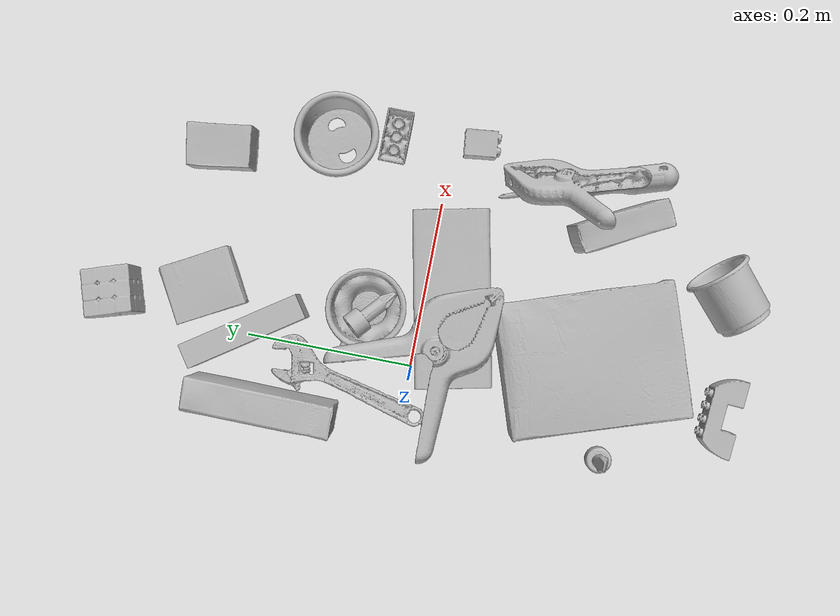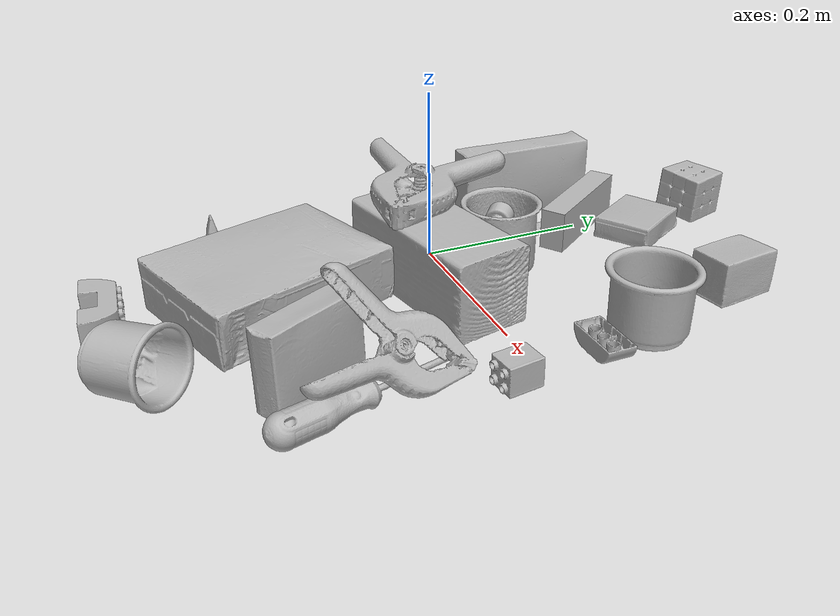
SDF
<sdf version="1.4">
  <world name="default">
    <light name="light1" type="point">
      <pose>0 0 1 0 0 0</pose>
      <diffuse>3 3 3 1</diffuse>
      <specular>3 3 3 1</specular>
    </light>
    <light name="light2" type="point">
      <pose>0 0.5 2 0 0 0</pose>
      <diffuse>1 1 1 1</diffuse>
      <specular>1 1 1 1</specular>
    </light>
    <light name="light3" type="point">
      <pose>0 0.5 2 0 0 0</pose>
      <diffuse>3 3 3 1</diffuse>
      <specular>3 3 3 1</specular>
    </light>
    <scene>
      <ambient>0.7 0.7 0.7</ambient>
    </scene>
    <model name="box21">
      <link name="link_box21">
        <collision name="default">
          <geometry>
            <mesh>
              <uri>model://cracker_box/collision_meshes/collision.obj</uri>
              <scale>1.0 1.0 1.0</scale>
            </mesh>
          </geometry>
          <surface>
            <friction>
              <ode>
                <mu>0.5</mu>
                <mu2>0.5</mu2>
              </ode>
            </friction>
          <contact>
        <ode>
            <max_vel>0</max_vel>
            <min_depth>0.0001</min_depth>
            <kp>1e8</kp>
        </ode>
    </contact></surface>
        </collision>
        <visual name="default">
          <geometry>
            <mesh>
              <uri>model://cracker_box/visual_meshes/visual.dae</uri>
              <scale>1.0 1.0 1.0</scale>
            </mesh>
          </geometry>
        </visual>
        <inertial>
          <mass>1.391977071762085</mass>
          <pose>0.0009464159375056624 0.0002543424488976598 -0.0017029533628374338 -0.000316207597302205 -0.011106489600460226 0.002546794768991959</pose>
          <inertia>
            <ixx>0.0035405685</ixx>
            <iyy>0.0058461735</iyy>
            <izz>0.008343027</izz>
            <ixy>0</ixy>
            <ixz>0</ixz>
            <iyz>0</iyz>
          </inertia>
        </inertial>
      </link>
      <pose>0.05141538381576538 -0.20611552894115448 0.035531412810087204 3.1372012698467873 -0.01654375291454054 1.9021858092698642</pose>
    </model>
    <model name="box22">
      <link name="link_box22">
        <collision name="default">
          <geometry>
            <mesh>
              <uri>model://pudding_box/collision_meshes/collision.obj</uri>
              <scale>1.0 1.0 1.0</scale>
            </mesh>
          </geometry>
          <surface>
            <friction>
              <ode>
                <mu>0.5</mu>
                <mu2>0.5</mu2>
              </ode>
            </friction>
          <contact>
        <ode>
            <max_vel>0</max_vel>
            <min_depth>0.0001</min_depth>
            <kp>1e8</kp>
        </ode>
    </contact></surface>
        </collision>
        <visual name="default">
          <geometry>
            <mesh>
              <uri>model://pudding_box/visual_meshes/visual.dae</uri>
              <scale>1.0 1.0 1.0</scale>
            </mesh>
          </geometry>
        </visual>
        <inertial>
          <mass>0.30066633224487305</mass>
          <pose>0.0004894821904599667 0.0008067885646596551 -0.0005188827635720372 0.005213102250656644 -0.006603798267444238 0.020079828885202117</pose>
          <inertia>
            <ixx>0.0003398878</ixx>
            <iyy>0.00022867892</iyy>
            <izz>0.00050193316</izz>
            <ixy>0</ixy>
            <ixz>0</ixz>
            <iyz>0</iyz>
          </inertia>
        </inertial>
      </link>
      <pose>0.21305444836616516 -0.20964014530181885 0.045128364115953445 -0.08609046355948766 1.5478487085244839 0.4100360406527351</pose>
    </model>
    <model name="box23">
      <link name="link_box23">
        <collision name="default">
          <geometry>
            <mesh>
              <uri>model://rubiks_cube/collision_meshes/collision.obj</uri>
              <scale>1.0 1.0 1.0</scale>
            </mesh>
          </geometry>
          <surface>
            <friction>
              <ode>
                <mu>0.5</mu>
                <mu2>0.5</mu2>
              </ode>
            </friction>
          <contact>
        <ode>
            <max_vel>0</max_vel>
            <min_depth>0.0001</min_depth>
            <kp>1e8</kp>
        </ode>
    </contact></surface>
        </collision>
        <visual name="default">
          <geometry>
            <mesh>
              <uri>model://rubiks_cube/visual_meshes/visual.dae</uri>
              <scale>1.0 1.0 1.0</scale>
            </mesh>
          </geometry>
        </visual>
        <inertial>
          <mass>0.26383036375045776</mass>
          <pose>2.6721041649580002e-05 5.256966323941015e-05 -7.264316082000732e-06 -0.054671492146459166 -0.0981403456898064 -0.03445706250673431</pose>
          <inertia>
            <ixx>0.000145784</ixx>
            <iyy>0.00014510413</iyy>
            <izz>0.00014699204</izz>
            <ixy>0</ixy>
            <ixz>0</ixz>
            <iyz>0</iyz>
          </inertia>
        </inertial>
      </link>
      <pose>0.02077319659292698 0.3637858033180237 0.029700201004743576 -1.6127558965002518 -0.0206511178154147 -1.2633903002161604</pose>
    </model>
    <model name="cup1">
      <link name="link_cup1">
        <collision name="default">
          <geometry>
            <mesh>
              <uri>model://i_cups/collision_meshes/collision.obj</uri>
              <scale>1.0 1.0 1.0</scale>
            </mesh>
          </geometry>
          <surface>
            <friction>
              <ode>
                <mu>0.5</mu>
                <mu2>0.5</mu2>
              </ode>
            </friction>
          <contact>
        <ode>
            <max_vel>0</max_vel>
            <min_depth>0.0001</min_depth>
            <kp>1e8</kp>
        </ode>
    </contact></surface>
        </collision>
        <visual name="default">
          <geometry>
            <mesh>
              <uri>model://i_cups/visual_meshes/visual.dae</uri>
              <scale>1.0 1.0 1.0</scale>
            </mesh>
          </geometry>
        </visual>
        <inertial>
          <mass>0.07817669957876205</mass>
          <pose>0.00011240140884183347 0.00016797371790744364 -0.0008579030982218683 -0.02898336998566683 -0.039872909189422004 -0.34590568894983</pose>
          <inertia>
            <ixx>0.000108236774</ixx>
            <iyy>0.000109190434</iyy>
            <izz>0.00012097212</izz>
            <ixy>0</ixy>
            <ixz>0</ixz>
            <iyz>0</iyz>
          </inertia>
        </inertial>
      </link>
      <pose>0.25053414702415466 0.13546046614646912 0.03777345269918442 0.002000637435854322 -0.006338213281684127 -2.9036250026230164</pose>
    </model>
    <model name="cup2">
      <link name="link_cup2">
        <collision name="default">
          <geometry>
            <mesh>
              <uri>model://f_cups/collision_meshes/collision.obj</uri>
              <scale>1.0 1.0 1.0</scale>
            </mesh>
          </geometry>
          <surface>
            <friction>
              <ode>
                <mu>0.5</mu>
                <mu2>0.5</mu2>
              </ode>
            </friction>
          <contact>
        <ode>
            <max_vel>0</max_vel>
            <min_depth>0.0001</min_depth>
            <kp>1e8</kp>
        </ode>
    </contact></surface>
        </collision>
        <visual name="default">
          <geometry>
            <mesh>
              <uri>model://f_cups/visual_meshes/visual.dae</uri>
              <scale>1.0 1.0 1.0</scale>
            </mesh>
          </geometry>
        </visual>
        <inertial>
          <mass>0.06179655343294144</mass>
          <pose>-0.003171469084918499 -0.0006240077782422304 -0.0036555363330990076 0.786228783809594 -0.26079147583364887 -0.18237327348602217</pose>
          <inertia>
            <ixx>5.8090412e-05</ixx>
            <iyy>6.0937502e-05</iyy>
            <izz>6.3437656e-05</izz>
            <ixy>0</ixy>
            <ixz>0</ixz>
            <iyz>0</iyz>
          </inertia>
        </inertial>
      </link>
      <pose>0.15609270334243774 -0.3561132848262787 0.03703620284795761 1.3143680967358247 -1.1802852942612574 2.547843628977089</pose>
    </model>
    <model name="box11">
      <link name="link_box11">
        <collision name="default">
          <geometry>
            <mesh>
              <uri>model://jenga/collision_meshes/collision.obj</uri>
              <scale>1.0 1.0 1.0</scale>
            </mesh>
          </geometry>
          <surface>
            <friction>
              <ode>
                <mu>0.5</mu>
                <mu2>0.5</mu2>
              </ode>
            </friction>
          <contact>
        <ode>
            <max_vel>0</max_vel>
            <min_depth>0.0001</min_depth>
            <kp>1e8</kp>
        </ode>
    </contact></surface>
        </collision>
        <visual name="default">
          <geometry>
            <mesh>
              <uri>model://jenga/visual_meshes/visual.dae</uri>
              <scale>1.0 1.0 1.0</scale>
            </mesh>
          </geometry>
        </visual>
        <inertial>
          <mass>0.2841220796108246</mass>
          <pose>-2.5028555228345795e-07 -0.00010250010382151231 -4.0923401684267446e-05 0.0 -7.34215461761844e-07 0.0</pose>
          <inertia>
            <ixx>7.8623474e-05</ixx>
            <iyy>0.00053275056</iyy>
            <izz>0.0005687565</izz>
            <ixy>0</ixy>
            <ixz>0</ixz>
            <iyz>0</iyz>
          </inertia>
        </inertial>
      </link>
      <pose>0.005068609490990639 0.201974555850029 0.02470194548368454 1.5774964672180931 -6.540987745935038e-08 2.1730840730442096</pose>
    </model>
    <model name="box12">
      <link name="link_box12">
        <collision name="default">
          <geometry>
            <mesh>
              <uri>model://wood_block/collision_meshes/collision.obj</uri>
              <scale>1.0 1.0 1.0</scale>
            </mesh>
          </geometry>
          <surface>
            <friction>
              <ode>
                <mu>0.5</mu>
                <mu2>0.5</mu2>
              </ode>
            </friction>
          <contact>
        <ode>
            <max_vel>0</max_vel>
            <min_depth>0.0001</min_depth>
            <kp>1e8</kp>
        </ode>
    </contact></surface>
        </collision>
        <visual name="default">
          <geometry>
            <mesh>
              <uri>model://wood_block/visual_meshes/visual.dae</uri>
              <scale>1.0 1.0 1.0</scale>
            </mesh>
          </geometry>
        </visual>
        <inertial>
          <mass>1.792885661125183</mass>
          <pose>-5.813315510749817e-06 -0.0005708095268346369 0.0002640858292579651 -0.0522099864925601 -0.005192695938411627 -0.006861379223067069</pose>
          <inertia>
            <ixx>0.0023991528</ixx>
            <iyy>0.007578924</iyy>
            <izz>0.007550574</izz>
            <ixy>0</ixy>
            <ixz>0</ixz>
            <iyz>0</iyz>
          </inertia>
        </inertial>
      </link>
      <pose>0.09111347049474716 -0.03148794546723366 0.04525856301188469 -0.005209952743308998 0.0057183241263252865 0.21112104732891496</pose>
    </model>
    <model name="box13">
      <link name="link_box13">
        <collision name="default">
          <geometry>
            <mesh>
              <uri>model://sugar_box/collision_meshes/collision.obj</uri>
              <scale>1.0 1.0 1.0</scale>
            </mesh>
          </geometry>
          <surface>
            <friction>
              <ode>
                <mu>0.5</mu>
                <mu2>0.5</mu2>
              </ode>
            </friction>
          <contact>
        <ode>
            <max_vel>0</max_vel>
            <min_depth>0.0001</min_depth>
            <kp>1e8</kp>
        </ode>
    </contact></surface>
        </collision>
        <visual name="default">
          <geometry>
            <mesh>
              <uri>model://sugar_box/visual_meshes/visual.dae</uri>
              <scale>1.0 1.0 1.0</scale>
            </mesh>
          </geometry>
        </visual>
        <inertial>
          <mass>0.8825364708900452</mass>
          <pose>0.0010343727190047503 3.8491099985549226e-05 -0.00036364805418998003 -0.0004046260965456432 0.0010506635219437153 0.002615379021860657</pose>
          <inertia>
            <ixx>0.0007353271</ixx>
            <iyy>0.0023767278</iyy>
            <izz>0.002845227</izz>
            <ixy>0</ixy>
            <ixz>0</ixz>
            <iyz>0</iyz>
          </inertia>
        </inertial>
      </link>
      <pose>-0.07476019859313965 0.16333171725273132 0.04645010828971863 1.5710197338333358 -3.9933661365875475e-05 1.5643783802861186</pose>
    </model>
    <model name="box14">
      <link name="link_box14">
        <collision name="default">
          <geometry>
            <mesh>
              <uri>model://gelatin_box/collision_meshes/collision.obj</uri>
              <scale>1.0 1.0 1.0</scale>
            </mesh>
          </geometry>
          <surface>
            <friction>
              <ode>
                <mu>0.5</mu>
                <mu2>0.5</mu2>
              </ode>
            </friction>
          <contact>
        <ode>
            <max_vel>0</max_vel>
            <min_depth>0.0001</min_depth>
            <kp>1e8</kp>
        </ode>
    </contact></surface>
        </collision>
        <visual name="default">
          <geometry>
            <mesh>
              <uri>model://gelatin_box/visual_meshes/visual.dae</uri>
              <scale>1.0 1.0 1.0</scale>
            </mesh>
          </geometry>
        </visual>
        <inertial>
          <mass>0.13771659135818481</mass>
          <pose>0.0004319618456065655 0.00011156871914863586 -0.0003640321083366871 -0.0010503722043797578 -0.004755819155943452 0.016440555746729004</pose>
          <inertia>
            <ixx>9.721668e-05</ixx>
            <iyy>6.944137e-05</iyy>
            <izz>0.00014798543</izz>
            <ixy>0</ixy>
            <ixz>0</ixz>
            <iyz>0</iyz>
          </inertia>
        </inertial>
      </link>
      <pose>0.048427555710077286 0.26257383823394775 0.014580638147890568 -3.1258657195336137 -0.025719272308993183 0.5098933370335165</pose>
    </model>
    <model name="cup15">
      <link name="link_cup15">
        <collision name="default">
          <geometry>
            <mesh>
              <uri>model://mug/collision_meshes/collision.obj</uri>
              <scale>1.0 1.0 1.0</scale>
            </mesh>
          </geometry>
          <surface>
            <friction>
              <ode>
                <mu>0.5</mu>
                <mu2>0.5</mu2>
              </ode>
            </friction>
          <contact>
        <ode>
            <max_vel>0</max_vel>
            <min_depth>0.0001</min_depth>
            <kp>1e8</kp>
        </ode>
    </contact></surface>
        </collision>
        <visual name="default">
          <geometry>
            <mesh>
              <uri>model://mug/visual_meshes/visual.dae</uri>
              <scale>1.0 1.0 1.0</scale>
            </mesh>
          </geometry>
        </visual>
        <inertial>
          <mass>0.09286905825138092</mass>
          <pose>0.009571668691933155 0.0008143252343870699 -0.010947328992187977 -0.12983168029791675 0.08737751579099198 0.05507277032354666</pose>
          <inertia>
            <ixx>9.2248694e-05</ixx>
            <iyy>0.00010303637</iyy>
            <izz>0.00011916295</izz>
            <ixy>0</ixy>
            <ixz>0</ixz>
            <iyz>0</iyz>
          </inertia>
        </inertial>
      </link>
      <pose>0.04876173287630081 0.06597407162189484 0.0409490130841732 5.69175113209793e-07 -8.471694039949233e-07 -0.32485721897733977</pose>
    </model>
    <model name="toy1">
      <link name="link_toy1">
        <collision name="default">
          <geometry>
            <mesh>
              <uri>model://e_toy_airplane/collision_meshes/collision.obj</uri>
              <scale>1.0 1.0 1.0</scale>
            </mesh>
          </geometry>
          <surface>
            <friction>
              <ode>
                <mu>0.5</mu>
                <mu2>0.5</mu2>
              </ode>
            </friction>
          <contact>
        <ode>
            <max_vel>0</max_vel>
            <min_depth>0.0001</min_depth>
            <kp>1e8</kp>
        </ode>
    </contact></surface>
        </collision>
        <visual name="default">
          <geometry>
            <mesh>
              <uri>model://e_toy_airplane/visual_meshes/visual.dae</uri>
              <scale>1.0 1.0 1.0</scale>
            </mesh>
          </geometry>
        </visual>
        <inertial>
          <mass>0.023911256343126297</mass>
          <pose>0.00011740469199139625 -2.2482965505332686e-05 -0.011187205091118813 0.005518515901869279 0.009228280443904262 0.15041685177791278</pose>
          <inertia>
            <ixx>7.297989e-06</ixx>
            <iyy>7.223337e-06</iyy>
            <izz>2.1933329e-06</izz>
            <ixy>0</ixy>
            <ixz>0</ixz>
            <iyz>0</iyz>
          </inertia>
        </inertial>
      </link>
      <pose>-0.06568524241447449 -0.24347129464149475 0.03321295231580734 9.987161479392767e-05 3.331834214289189e-06 1.42110109874372</pose>
    </model>
    <model name="toy2">
      <link name="link_toy2">
        <collision name="default">
          <geometry>
            <mesh>
              <uri>model://e_lego_duplo/collision_meshes/collision.obj</uri>
              <scale>1.0 1.0 1.0</scale>
            </mesh>
          </geometry>
          <surface>
            <friction>
              <ode>
                <mu>0.5</mu>
                <mu2>0.5</mu2>
              </ode>
            </friction>
          <contact>
        <ode>
            <max_vel>0</max_vel>
            <min_depth>0.0001</min_depth>
            <kp>1e8</kp>
        </ode>
    </contact></surface>
        </collision>
        <visual name="default">
          <geometry>
            <mesh>
              <uri>model://e_lego_duplo/visual_meshes/visual.dae</uri>
              <scale>1.0 1.0 1.0</scale>
            </mesh>
          </geometry>
        </visual>
        <inertial>
          <mass>0.11075761169195175</mass>
          <pose>0.00032560486579313874 0.0002348541165702045 0.0019521445501595736 -0.02256776115193108 -6.825012723321977e-05 -0.007625153470106003</pose>
          <inertia>
            <ixx>2.3096625e-05</ixx>
            <iyy>9.479449e-05</iyy>
            <izz>9.231077e-05</izz>
            <ixy>0</ixy>
            <ixz>0</ixz>
            <iyz>0</iyz>
          </inertia>
        </inertial>
      </link>
      <pose>0.015295609831809998 -0.37482789158821106 0.01651785522699356 -1.57158841156779 0.005904221784687612 -0.07164010087633414</pose>
    </model>
    <model name="toy3">
      <link name="link_toy3">
        <collision name="default">
          <geometry>
            <mesh>
              <uri>model://foam_brick/collision_meshes/collision.obj</uri>
              <scale>1.0 1.0 1.0</scale>
            </mesh>
          </geometry>
          <surface>
            <friction>
              <ode>
                <mu>0.5</mu>
                <mu2>0.5</mu2>
              </ode>
            </friction>
          <contact>
        <ode>
            <max_vel>0</max_vel>
            <min_depth>0.0001</min_depth>
            <kp>1e8</kp>
        </ode>
    </contact></surface>
        </collision>
        <visual name="default">
          <geometry>
            <mesh>
              <uri>model://foam_brick/visual_meshes/visual.dae</uri>
              <scale>1.0 1.0 1.0</scale>
            </mesh>
          </geometry>
        </visual>
        <inertial>
          <mass>0.18736568093299866</mass>
          <pose>-0.0002522472059354186 0.0003458441933616996 -0.0002532101352699101 -0.2940186982087205 0.017274432871393446 -0.000744985669109422</pose>
          <inertia>
            <ixx>8.184482e-05</ixx>
            <iyy>0.00013066948</iyy>
            <izz>0.00013233014</izz>
            <ixy>0</ixy>
            <ixz>0</ixz>
            <iyz>0</iyz>
          </inertia>
        </inertial>
      </link>
      <pose>0.21443672478199005 0.2705848515033722 0.025496836751699448 3.1325083677467522 0.006607234973189367 1.7071060013836128</pose>
    </model>
    <model name="toy4">
      <link name="link_toy4">
        <collision name="default">
          <geometry>
            <mesh>
              <uri>model://b_lego_duplo/collision_meshes/collision.obj</uri>
              <scale>1.0 1.0 1.0</scale>
            </mesh>
          </geometry>
          <surface>
            <friction>
              <ode>
                <mu>0.5</mu>
                <mu2>0.5</mu2>
              </ode>
            </friction>
          <contact>
        <ode>
            <max_vel>0</max_vel>
            <min_depth>0.0001</min_depth>
            <kp>1e8</kp>
        </ode>
    </contact></surface>
        </collision>
        <visual name="default">
          <geometry>
            <mesh>
              <uri>model://b_lego_duplo/visual_meshes/visual.dae</uri>
              <scale>1.0 1.0 1.0</scale>
            </mesh>
          </geometry>
        </visual>
        <inertial>
          <mass>0.025353357195854187</mass>
          <pose>-0.00011053043272113428 -9.152237907983363e-06 0.001929429010488093 -0.03749469050897604 -0.02635423063131295 0.4518929125976256</pose>
          <inertia>
            <ixx>5.188755e-06</ixx>
            <iyy>5.223636e-06</iyy>
            <izz>4.623011e-06</izz>
            <ixy>0</ixy>
            <ixz>0</ixz>
            <iyz>0</iyz>
          </inertia>
        </inertial>
      </link>
      <pose>0.27851077914237976 -0.033112864941358566 0.016216622665524483 -1.580233882386815 0.00032662811076978926 -3.024908534739917</pose>
    </model>
    <model name="toy5">
      <link name="link_toy5">
        <collision name="default">
          <geometry>
            <mesh>
              <uri>model://d_toy_airplane/collision_meshes/collision.obj</uri>
              <scale>1.0 1.0 1.0</scale>
            </mesh>
          </geometry>
          <surface>
            <friction>
              <ode>
                <mu>0.5</mu>
                <mu2>0.5</mu2>
              </ode>
            </friction>
          <contact>
        <ode>
            <max_vel>0</max_vel>
            <min_depth>0.0001</min_depth>
            <kp>1e8</kp>
        </ode>
    </contact></surface>
        </collision>
        <visual name="default">
          <geometry>
            <mesh>
              <uri>model://d_toy_airplane/visual_meshes/visual.dae</uri>
              <scale>1.0 1.0 1.0</scale>
            </mesh>
          </geometry>
        </visual>
        <inertial>
          <mass>0.012228579260408878</mass>
          <pose>9.410289931111038e-05 -5.8093195548281074e-05 -0.011728097684681416 0.00026677116185868234 0.004678984415060646 0.5194210089241819</pose>
          <inertia>
            <ixx>3.6658907e-06</ixx>
            <iyy>3.6686554e-06</iyy>
            <izz>1.1067563e-06</izz>
            <ixy>0</ixy>
            <ixz>0</ixz>
            <iyz>0</iyz>
          </inertia>
        </inertial>
      </link>
      <pose>0.05892070382833481 0.05560673773288727 0.050243593752384186 1.7537485759178484 0.6163415627474834 0.9473478140716721</pose>
    </model>
    <model name="toy6">
      <link name="link_toy6">
        <collision name="default">
          <geometry>
            <mesh>
              <uri>model://a_lego_duplo/collision_meshes/collision.obj</uri>
              <scale>1.0 1.0 1.0</scale>
            </mesh>
          </geometry>
          <surface>
            <friction>
              <ode>
                <mu>0.5</mu>
                <mu2>0.5</mu2>
              </ode>
            </friction>
          <contact>
        <ode>
            <max_vel>0</max_vel>
            <min_depth>0.0001</min_depth>
            <kp>1e8</kp>
        </ode>
    </contact></surface>
        </collision>
        <visual name="default">
          <geometry>
            <mesh>
              <uri>model://a_lego_duplo/visual_meshes/visual.dae</uri>
              <scale>1.0 1.0 1.0</scale>
            </mesh>
          </geometry>
        </visual>
        <inertial>
          <mass>0.012199957855045795</mass>
          <pose>-0.00011337617615936324 0.00018517585704103112 0.0003692606114782393 -0.014116995063493705 -0.0001256559143483996 6.140869386576653e-05</pose>
          <inertia>
            <ixx>1.564132e-06</ixx>
            <iyy>3.5039989e-06</iyy>
            <izz>4.340482e-06</izz>
            <ixy>0</ixy>
            <ixz>0</ixz>
            <iyz>0</iyz>
          </inertia>
        </inertial>
      </link>
      <pose>0.26803022623062134 0.0701238214969635 0.01212469395250082 -3.1413059159337826 -0.015582900272847025 -0.010880140140478237</pose>
    </model>
    <model name="hardware1">
      <link name="link_hardware1">
        <collision name="default">
          <geometry>
            <mesh>
              <uri>model://phillips_screwdriver/collision_meshes/collision.obj</uri>
              <scale>1.0 1.0 1.0</scale>
            </mesh>
          </geometry>
          <surface>
            <friction>
              <ode>
                <mu>0.5</mu>
                <mu2>0.5</mu2>
              </ode>
            </friction>
          <contact>
        <ode>
            <max_vel>0</max_vel>
            <min_depth>0.0001</min_depth>
            <kp>1e8</kp>
        </ode>
    </contact></surface>
        </collision>
        <visual name="default">
          <geometry>
            <mesh>
              <uri>model://phillips_screwdriver/visual_meshes/visual.dae</uri>
              <scale>1.0 1.0 1.0</scale>
            </mesh>
          </geometry>
        </visual>
        <inertial>
          <mass>0.06495495140552521</mass>
          <pose>-0.04777183011174202 0.0010362302418798208 -0.00045555501128546894 -0.1571888451297522 0.005850998841919991 -0.0021567342335393844</pose>
          <inertia>
            <ixx>7.63154e-06</ixx>
            <iyy>9.568614e-05</iyy>
            <izz>9.576745e-05</izz>
            <ixy>0</ixy>
            <ixz>0</ixz>
            <iyz>0</iyz>
          </inertia>
        </inertial>
      </link>
      <pose>0.25562453269958496 -0.1697978675365448 0.016042480245232582 -1.055470747304258 0.049395760682736156 1.8867900936430486</pose>
    </model>
    <model name="hardware2">
      <link name="link_hardware2">
        <collision name="default">
          <geometry>
            <mesh>
              <uri>model://extra_large_clamp/collision_meshes/collision.obj</uri>
              <scale>1.0 1.0 1.0</scale>
            </mesh>
          </geometry>
          <surface>
            <friction>
              <ode>
                <mu>0.5</mu>
                <mu2>0.5</mu2>
              </ode>
            </friction>
          <contact>
        <ode>
            <max_vel>0</max_vel>
            <min_depth>0.0001</min_depth>
            <kp>1e8</kp>
        </ode>
    </contact></surface>
        </collision>
        <visual name="default">
          <geometry>
            <mesh>
              <uri>model://extra_large_clamp/visual_meshes/visual.dae</uri>
              <scale>1.0 1.0 1.0</scale>
            </mesh>
          </geometry>
        </visual>
        <inertial>
          <mass>0.19384004175662994</mass>
          <pose>0.003232018556445837 -7.61538467486389e-05 0.00031721554114483297 0.013786997874205318 -0.000506684650300538 -0.0008936209831217155</pose>
          <inertia>
            <ixx>0.00029460518</ixx>
            <iyy>0.00050721905</iyy>
            <izz>0.0007749263</izz>
            <ixy>0</ixy>
            <ixz>0</ixz>
            <iyz>0</iyz>
          </inertia>
        </inertial>
      </link>
      <pose>0.029101930558681488 -0.025054704397916794 0.10909504443407059 3.103338232333182 -0.00415113814216769 -0.6232581907254582</pose>
    </model>
    <model name="hardware3">
      <link name="link_hardware3">
        <collision name="default">
          <geometry>
            <mesh>
              <uri>model://large_clamp/collision_meshes/collision.obj</uri>
              <scale>1.0 1.0 1.0</scale>
            </mesh>
          </geometry>
          <surface>
            <friction>
              <ode>
                <mu>0.5</mu>
                <mu2>0.5</mu2>
              </ode>
            </friction>
          <contact>
        <ode>
            <max_vel>0</max_vel>
            <min_depth>0.0001</min_depth>
            <kp>1e8</kp>
        </ode>
    </contact></surface>
        </collision>
        <visual name="default">
          <geometry>
            <mesh>
              <uri>model://large_clamp/visual_meshes/visual.dae</uri>
              <scale>1.0 1.0 1.0</scale>
            </mesh>
          </geometry>
        </visual>
        <inertial>
          <mass>0.09168914705514908</mass>
          <pose>0.006369357462972403 0.0003585686208680272 -0.0001839803735492751 -0.0021330784539622108 0.00967158945845961 0.026633182273159455</pose>
          <inertia>
            <ixx>8.0894904e-05</ixx>
            <iyy>0.00015362375</iyy>
            <izz>0.00022223631</izz>
            <ixy>0</ixy>
            <ixz>0</ixz>
            <iyz>0</iyz>
          </inertia>
        </inertial>
      </link>
      <pose>0.24630318582057953 -0.1395949274301529 0.04920636862516403 0.8755747350635633 0.4949311606444482 1.487626135352927</pose>
    </model>
    <model name="hardware4">
      <link name="link_hardware4">
        <collision name="default">
          <geometry>
            <mesh>
              <uri>model://adjustable_wrench/collision_meshes/collision.obj</uri>
              <scale>1.0 1.0 1.0</scale>
            </mesh>
          </geometry>
          <surface>
            <friction>
              <ode>
                <mu>0.5</mu>
                <mu2>0.5</mu2>
              </ode>
            </friction>
          <contact>
        <ode>
            <max_vel>0</max_vel>
            <min_depth>0.0001</min_depth>
            <kp>1e8</kp>
        </ode>
    </contact></surface>
        </collision>
        <visual name="default">
          <geometry>
            <mesh>
              <uri>model://adjustable_wrench/visual_meshes/visual.dae</uri>
              <scale>1.0 1.0 1.0</scale>
            </mesh>
          </geometry>
        </visual>
        <inertial>
          <mass>0.03454793244600296</mass>
          <pose>0.03740980476140976 -0.0028968879487365484 -0.001114922808483243 -0.01447336202596381 0.006656025927011416 -0.010954184309206349</pose>
          <inertia>
            <ixx>7.0707333e-06</ixx>
            <iyy>8.275469e-05</iyy>
            <izz>8.944984e-05</izz>
            <ixy>0</ixy>
            <ixz>0</ixz>
            <iyz>0</iyz>
          </inertia>
        </inertial>
      </link>
      <pose>-0.038617368787527084 0.07507893443107605 0.006125037558376789 0.04675917498800446 -0.029270596803315407 1.3106749727286715</pose>
    </model>
  <physics type="ode">
      <max_contacts>50</max_contacts>
      <ode>
        <solver>
          <type>quick</type>
          <iters>75</iters>
        </solver>
        <constraints>
          <contact_max_correcting_vel>0</contact_max_correcting_vel>
          <contact_surface_layer>0</contact_surface_layer>
        </constraints>
      </ode>
    </physics></world>
</sdf>
